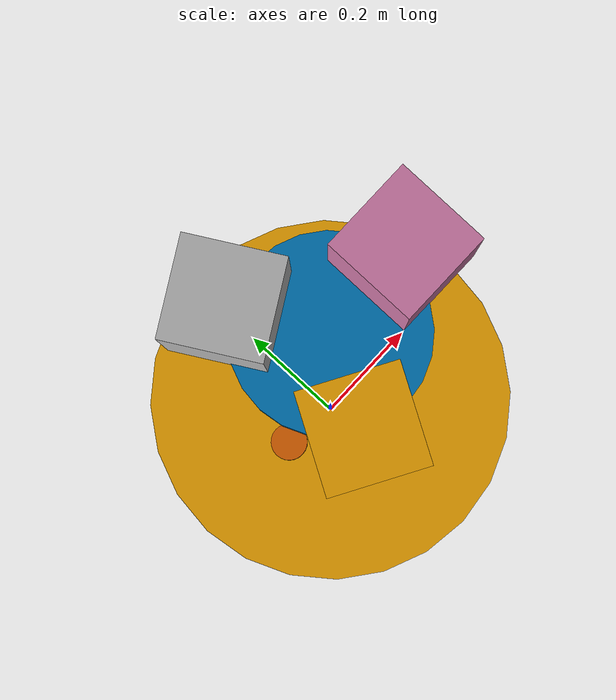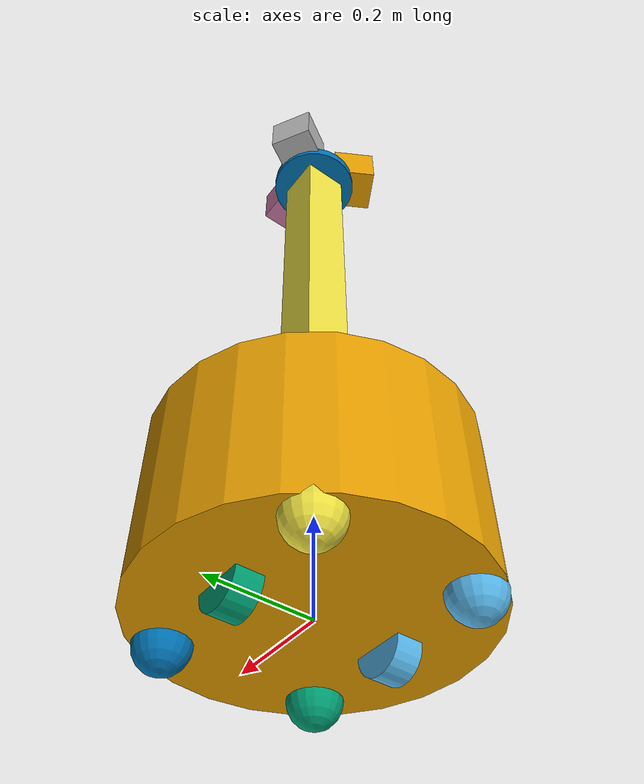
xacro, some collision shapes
<?xml version='1.0' ?>
<robot name = "Doris" xmlns:xacro="http://www.ros.org/wiki/xacro">
	<link name='cuerpo'>
		<inertial>
			<inertia  ixx="1.0" ixy="0.0"  ixz="0.0"  iyy="1.0"  iyz="0.0"  izz="1.0" />	                <origin xyz = "0 0 0.165" rpy ="0 0 0"/>
			<mass value= "80" />
		</inertial>
		<visual>
			<origin xyz = "0 0 0.165" rpy ="0 0 0"/>
			<geometry>
				<cylinder radius="0.30" length="0.33" />
			</geometry>
		</visual>
		<collision>
			<origin xyz = "0 0 0.165" rpy ="0 0 0"/>
			<geometry>
				<cylinder radius="0.30" length="0.33" />
			</geometry>
		</collision>
	</link>
	<joint name="right_axis" type="continuous" >
		<origin xyz = "0 -0.15 0" rpy ="0 0 0"/>
		<parent link = "cuerpo"/>
		<child link= "right_wheel"/>
		<axis xyz="0 1 0"/>
	</joint>
	<link name='right_wheel'>
		<inertial>
			<inertia  ixx="1.0" ixy="0.0"  ixz="0.0"  iyy="1.0"  iyz="0.0"  izz="1.0" />	                <origin xyz = "0 0 0" rpy ="0 1.5707 1.5707"/>
			<mass value= "0.3" />
		</inertial>
		<visual>
			<origin xyz = "0 0 0" rpy ="0 1.5707 1.5707"/>
			<geometry>
				<cylinder radius="0.05" length="0.05" />
			</geometry>
		</visual>
		<collision>
			<origin xyz = "0 0 0" rpy ="0 1.5707 1.5707"/>
			<geometry>
				<cylinder radius="0.05" length="0.05" />
			</geometry>
		</collision>

	</link>
	<joint name="left_axis" type="continuous" >
		<origin xyz = "0 0.15 0" rpy ="0 0 0"/>
		<parent link = "cuerpo"/>
		<child link= "left_wheel"/>
		<axis xyz="0 1 0"/>
	</joint>
	<link name='left_wheel'>
		<inertial>
			<inertia  ixx="1.0" ixy="0.0"  ixz="0.0"  iyy="1.0"  iyz="0.0"  izz="1.0" />	                <origin xyz = "0 0 0" rpy ="0 1.5707 1.5707"/>
			<mass value= "0.3" />
		</inertial>
		<visual>
			<origin xyz = "0 0 0" rpy =" 0 1.5707 1.5707"/>
			<geometry>
				<cylinder radius="0.05" length="0.05" />
			</geometry>
		</visual>
		<collision>
			<origin xyz = "0 0 0" rpy =" 0 1.5707 1.5707"/>
			<geometry>
				<cylinder radius="0.05" length="0.05" />
			</geometry>
		</collision>

	</link>
	<joint name="mastil_cuerpo" type="fixed" >
		<origin xyz = "0 0 0.33" rpy ="0 0 0"/>
		<parent link = "cuerpo"/>
		<child link= "mastil"/>
		<axis xyz="0 0 1"/>
	</joint>
	<link name='mastil'>
		<inertial>
			<inertia  ixx="1.0" ixy="0.0"  ixz="0.0"  iyy="1.0"  iyz="0.0"  izz="1.0" />	                <origin xyz = "0 0 0.475" rpy ="0 0 0"/>
			<mass value= "2" />
		</inertial>
		<visual>
			<origin xyz = "0 0 0.475" rpy =" 0 0 0"/>
			<geometry>
				<box size="0.1 0.1 0.95" />
			</geometry>
		</visual>
		<collision>
			<origin xyz = "0 0 0.475" rpy =" 0 0 0"/>
			<geometry>
				<box size="0.1 0.1 0.95" />
			</geometry>
		</collision>
	</link>
	<joint name="mastil_plat" type="fixed" >
		<origin xyz = "0 0 0.95" rpy ="0 0 0"/>
		<parent link = "mastil"/>
		<child link= "plataforma"/>
		<axis xyz="0 0 1"/>
	</joint>
	<link name='plataforma'>
		<inertial>
			<inertia  ixx="1.0" ixy="0.0"  ixz="0.0"  iyy="1.0"  iyz="0.0"  izz="1.0"/>	                <origin xyz = "0 0 0.0125" rpy ="0 0 0"/>
			<mass value= "0.3" />
		</inertial>
		<visual>
			<origin xyz = "0 0 0.0125" rpy ="0 0 0"/>
			<geometry>
				<cylinder radius="0.1" length="0.025" />
			</geometry>
		</visual>
		<collision>
			<origin xyz = "0 0 0.0125" rpy ="0 0 0"/>
			<geometry>
				<cylinder radius="0.1" length="0.025" />
			</geometry>
		</collision>

	</link>
	<joint name="contrap_cuerpo" type="fixed" >
		<origin xyz = "-0.1 0 0.33" rpy ="0 0 0"/>
		<parent link = "cuerpo"/>
		<child link= "contrapeso"/>

	</joint>
	<link name='contrapeso'>
		<inertial>
			<inertia  ixx="1.0" ixy="0.0"  ixz="0.0"  iyy="1.0"  iyz="0.0"  izz="1.0" />	                <origin xyz = "0 0 0.0125" rpy ="0 0 0"/>
			<mass value= "0.040046547" />
		</inertial>
		<visual>
			<origin xyz = "0 0 0.0125" rpy ="0 0 0"/>
			<geometry>
				<cylinder radius="0.03" length="0.025" />
			</geometry>
		</visual>
		<collision>
			<origin xyz = "0 0 0.0125" rpy ="0 0 0"/>
			<geometry>
				<cylinder radius="0.03" length="0.025" />
			</geometry>
		</collision>
	</link>

	<xacro:include filename= 'mycasterwheel.xacro'/>
	<xacro:include filename= "mycamera.xacro"/>
	<xacro:include filename= "mylaser.xacro"/>
	<xacro:mycamera parent="plataforma" prefix="cam1" pose_xyz="0.1 0 0.0625" pose_rpy="0 0 0" />
	<xacro:mycamera parent="plataforma" prefix="cam2" pose_xyz="-0.05 0.08660254 0.0625" pose_rpy="0 0 2.093" />
	<xacro:mycamera parent="plataforma" prefix="cam3" pose_xyz="-0.05 -0.08660254 0.0625" pose_rpy="0 0 -2.093"/>
	<xacro:mycasterwheel parent="cuerpo" prefix="cas1" pose_xyz="-0.2 -0.15 0" pose_rpy="0 0 0"/>
	<xacro:mycasterwheel parent="cuerpo" prefix="cas2" pose_xyz="0.2 -0.15 0" pose_rpy="0 0 0"/>
	<xacro:mycasterwheel parent="cuerpo" prefix="cas3" pose_xyz=" -0.2 0.15 0" pose_rpy="0 0 0"/>
	<xacro:mycasterwheel parent="cuerpo" prefix="cas4" pose_xyz="0.2 0.15 0" pose_rpy="0 0 0"/>
	<xacro:mylaser parent="cuerpo" prefix="laser" pose_xyz="0.1 0 0.35" pose_rpy="0 0 0"/>
	<gazebo>
		<plugin name="differential_drive_controller" filename="libgazebo_ros_diff_drive.so">
  			<alwaysOn>true</alwaysOn>
  			<updateRate>20</updateRate>
  			<leftJoint>right_axis</leftJoint>
  			<rightJoint>left_axis</rightJoint>
  			<wheelSeparation>0.1</wheelSeparation>
			<publishWheelTF>true</publishWheelTF>
			<publishWheelJointState>true</publishWheelJointState>
  			<wheelDiameter>0.1</wheelDiameter>
  			<torque>20</torque>
  			<commandTopic>cmd_vel</commandTopic>
  			<odometryTopic>odom</odometryTopic>
  			<odometryFrame>odom</odometryFrame>
  			<robotBaseFrame>cuerpo</robotBaseFrame>
  			<legacyMode>true</legacyMode>
  			</plugin>

  <plugin name="p3d_base_controller" filename="libgazebo_ros_p3d.so">
    <alwaysOn>true</alwaysOn>
    <updateRate>50.0</updateRate>
    <bodyName>cuerpo</bodyName>
    <topicName>ground_truth/state</topicName>
    <gaussianNoise>0.01</gaussianNoise>
    <frameName>world</frameName>
    <xyzOffsets>0 0 0</xyzOffsets>
    <rpyOffsets>0 0 0</rpyOffsets>
  </plugin>
</gazebo>

</robot>

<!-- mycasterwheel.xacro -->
<robot xmlns:xacro="http://www.ros.org/wiki/xacro">
<xacro:macro name="mycasterwheel" params="parent prefix pose_xyz pose_rpy" xmlns:xacro="http://www.ros.org/wiki/xacro">

	<joint name="${prefix}_joint" type="fixed">
		<origin xyz="${pose_xyz}" rpy="${pose_rpy}"/>
		<parent link="${parent}"/>
		<child link="${prefix}_link"/>
	</joint>
	<link name="${prefix}_link">
		<inertial>
			<mass value = "0.1"/>
			<origin xyz="0 0 0" rpy="0 0 0"/>
			 <inertia ixx="0.001" ixy="0.0" ixz="0.0" iyy="0.001" iyz="0.0" izz="0.001"/>
		</inertial>

		<collision>
			<origin xyz="0 0 0" rpy="0 0 0"/>
			<geometry>
				<sphere radius="0.05"/>
			</geometry>

		</collision>
		<visual>
			<origin xyz="0 0 0" rpy="0 0 0"/>
			<geometry>
				<sphere radius="0.05"/>
			</geometry>
		</visual>
	</link>
	<gazebo reference ="${prefix}_link">
		<mu1 value="0.0"/>
    		<mu2 value="0.0"/>
    		<kp value="10000000.0"/>
    		<kd value="0.00001"/>
	</gazebo>

</xacro:macro>
</robot>

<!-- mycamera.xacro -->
<robot xmlns:xacro="http://www.ros.org/wiki/xacro">
	<xacro:macro name="mycamera" params="prefix parent pose_xyz pose_rpy" >
		<joint name="${prefix}_joint" type="fixed" >
				<origin xyz="${pose_xyz}" rpy="${pose_rpy}"/>
				<parent link = "${parent}"/>
				<child link= "${prefix}_link"/>
				<axis xyz="0 0 1"/>

		</joint>
		<link name = "${prefix}_link">
			<inertial>
				<mass value = "0.1"/>
				<origin xyz="0 0 0" rpy="0 0 0"/>
				<inertia ixx="1" ixy="0" ixz="0" iyy="1" iyz="0" izz="1" />
			</inertial>
			<collision>
				<origin xyz="0 0 0" rpy="0 0 0"/>
				<geometry>
					<box size ="0.1 0.1 0.1" />
				</geometry>
			</collision>
			<visual>
				<origin xyz="0 0 0" rpy="0 0 0"/>
				<geometry>
					<box size ="0.1 0.1 0.1" />
				</geometry>
			</visual>

		</link>
			<gazebo reference= "${prefix}_link">
				<sensor type = "camera" name = "${prefix}_camera">
					<parent link="${prefix}_link"/>
					<update_rate>30.0</update_rate>
					<camera>
				  <horizontal_fov>2.093</horizontal_fov>
				  <image>
				    <width>604</width>
				    <height>679</height>
				  </image>
				  <clip>
				    <near>0.1</near>
				    <far>100</far>
				  </clip>
				</camera>
				<plugin name="camera_controller" filename="libgazebo_ros_camera.so">
					      <alwaysOn>true</alwaysOn>
					      <updateRate>10</updateRate>
					      <cameraName>${prefix}</cameraName>
					      <imageTopicName>image_raw</imageTopicName>
					      <cameraInfoTopicName>camera_info</cameraInfoTopicName>
					      <frameName>${prefix}</frameName>
					      <hackBaseline>0.07</hackBaseline>
					      <Cx>906</Cx>
					      <Cy>339.5</Cy>
					      <distortionK1>-2.6019586095779829e-001</distortionK1>
					      <distortionK2>5.5052401922323718e-002</distortionK2>
					      <distortionK3>0.0</distortionK3>
					      <distortionT1>0.0</distortionT1>
					      <distortionT2>-4.5449850126361765e-003</distortionT2>
			      	</plugin>
			      </sensor>
			</gazebo>
</xacro:macro>
</robot>

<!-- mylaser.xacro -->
<robot xmlns:xacro="http://www.ros.org/wiki/xacro">
	<xacro:macro name="mylaser" params="parent prefix pose_xyz pose_rpy" xmlns:xacro="http://www.ros.org/wiki/xacro">

	<joint name="${prefix}_joint" type="fixed">
		<origin xyz="${pose_xyz}" rpy="${pose_rpy}"/>
		<parent link="${parent}"/>
		<child link="${prefix}_link"/>
		</joint>
	<link name= "${prefix}_link">
		<inertial>
			<mass value = "0.1"/>
				<origin xyz="0 0 0" rpy="0 0 0"/>
				<inertia ixx="1" ixy="0" ixz="0" iyy="1" iyz="0" izz="1" />
		</inertial>
		<collision name="collision_base">
				<origin xyz="0 0 0" rpy="0 0 0"/>
				<geometry>
					<box size="0.05 0.05 0.041"/>
				</geometry>
		</collision>
		<collision name="collision_top">
				<origin xyz="0 0 0" rpy="0 0 0"/>
				<geometry>
					<cylinder radius="0.021" length="0.029"/>
				</geometry>
		</collision>
		<visual>
			<origin xyz="0 0 0" rpy="0 0 0"/>
			<geometry>
				<mesh filename="file:///home/patri/catkin_ws/src/simulation/meshes/hokuyo.dae"/>
			</geometry>
		</visual>
	</link>

		<gazebo reference =  "${prefix}_link">
			<sensor name="laser" type="ray">
				<pose>0 0 0 0 0 0</pose>
				<ray>
				  <scan>
				    <horizontal>
				      <samples>640</samples>
				      <resolution>1</resolution>
				      <min_angle>-2.26889</min_angle>
				      <max_angle>2.268899</max_angle>
				    </horizontal>
				  </scan>
				  <range>
				    <min>0.08</min>
				    <max>10</max>
				    <resolution>0.01</resolution>
				  </range>
				</ray>
				<plugin name="laser" filename="libgazebo_ros_laser.so" >
				   <topicName>scan</topicName>
				   <frameName>${prefix}_link</frameName>
				</plugin>
				<always_on>1</always_on>
				<update_rate>30</update_rate>
				<visualize>true</visualize>
			  </sensor>
	</gazebo>

	</xacro:macro>
</robot>
